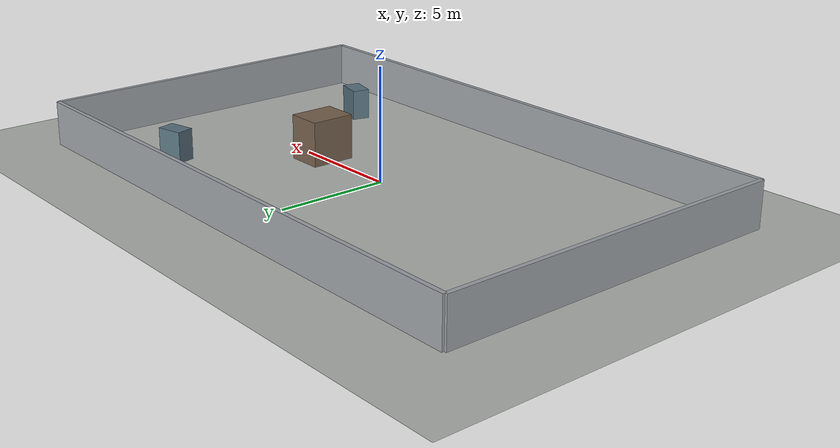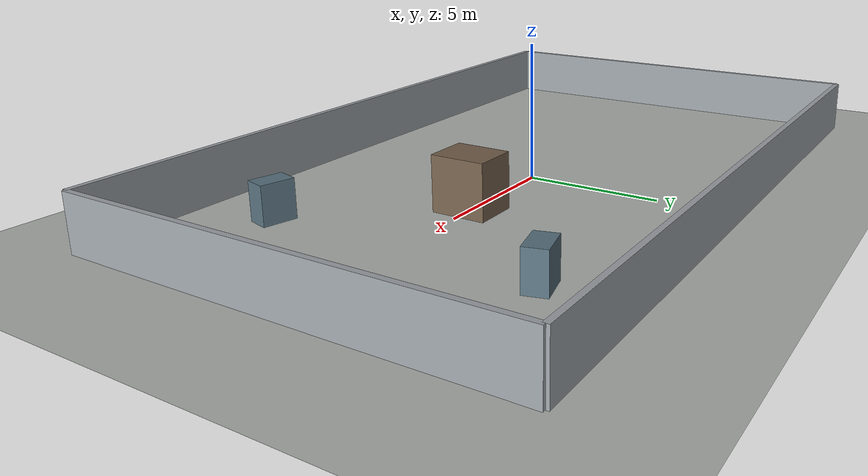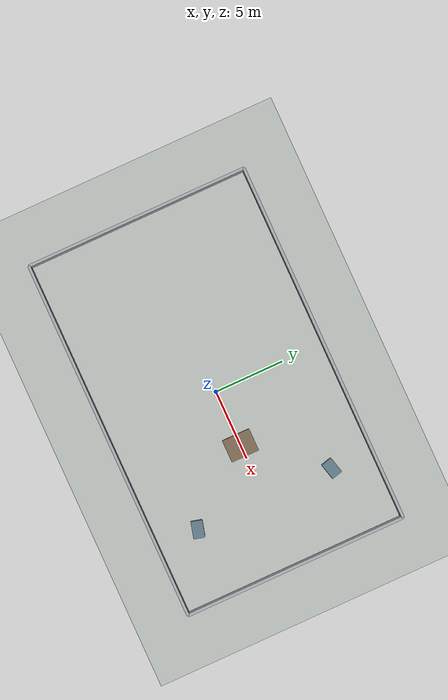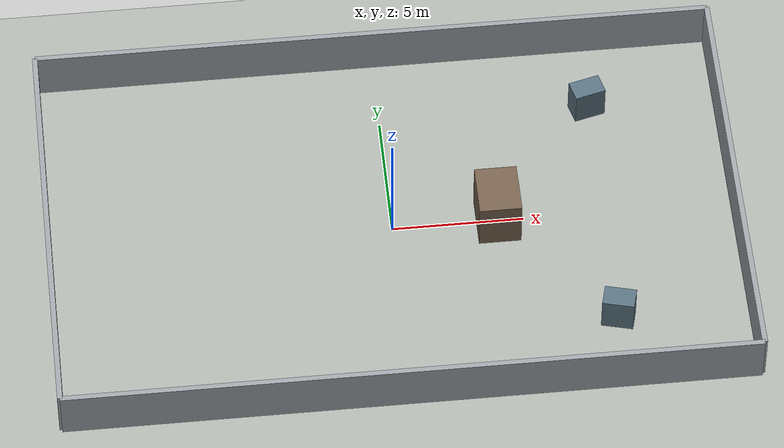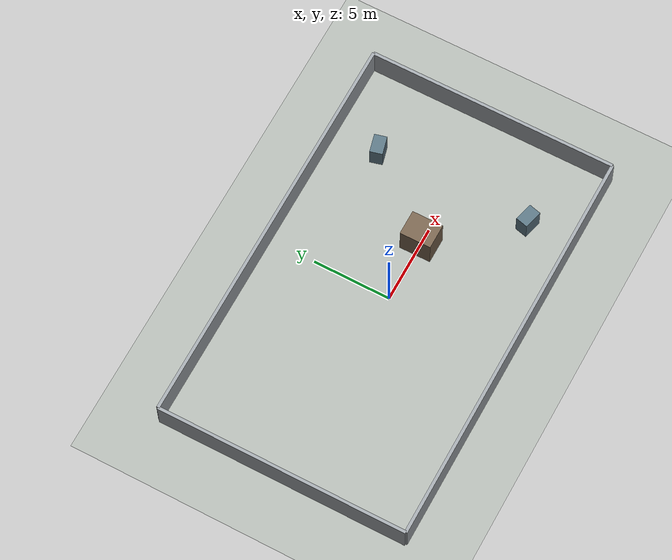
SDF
<?xml version="1.0" ?>
<sdf version="1.9">
  <world name="frontier_obstacle_world">
    <physics name="1ms" type="ignored">
      <max_step_size>0.001</max_step_size>
      <real_time_factor>1.0</real_time_factor>
      <real_time_update_rate>1000</real_time_update_rate>
    </physics>

    <plugin name="ignition::gazebo::systems::Physics" filename="ignition-gazebo-physics-system"/>
    <plugin name="ignition::gazebo::systems::SceneBroadcaster" filename="ignition-gazebo-scene-broadcaster-system"/>
    <plugin name="ignition::gazebo::systems::UserCommands" filename="ignition-gazebo-user-commands-system"/>
    <plugin name="ignition::gazebo::systems::Sensors" filename="ignition-gazebo-sensors-system">
      <render_engine>ogre2</render_engine>
    </plugin>

    <gravity>0 0 -9.81</gravity>

    <scene>
      <ambient>0.45 0.45 0.45 1</ambient>
      <background>0.72 0.76 0.80 1</background>
      <shadows>true</shadows>
    </scene>

    <model name="ground_plane">
      <static>true</static>
      <link name="link">
        <collision name="collision">
          <geometry>
            <plane>
              <normal>0 0 1</normal>
              <size>36 24</size>
            </plane>
          </geometry>
        </collision>
        <visual name="visual">
          <geometry>
            <plane>
              <normal>0 0 1</normal>
              <size>36 24</size>
            </plane>
          </geometry>
          <material>
            <ambient>0.68 0.70 0.68 1</ambient>
            <diffuse>0.68 0.70 0.68 1</diffuse>
          </material>
        </visual>
      </link>
    </model>

    <!-- Outer reference walls, far enough not to close the useful passages even with safety inflation. -->
    <model name="north_wall">
      <static>true</static>
      <pose>0 8.0 1 0 0 0</pose>
      <link name="link">
        <collision name="collision"><geometry><box><size>26 0.2 2</size></box></geometry></collision>
        <visual name="visual"><geometry><box><size>26 0.2 2</size></box></geometry>
          <material><ambient>0.62 0.64 0.66 1</ambient><diffuse>0.62 0.64 0.66 1</diffuse></material>
        </visual>
      </link>
    </model>

    <model name="south_wall">
      <static>true</static>
      <pose>0 -8.0 1 0 0 0</pose>
      <link name="link">
        <collision name="collision"><geometry><box><size>26 0.2 2</size></box></geometry></collision>
        <visual name="visual"><geometry><box><size>26 0.2 2</size></box></geometry>
          <material><ambient>0.62 0.64 0.66 1</ambient><diffuse>0.62 0.64 0.66 1</diffuse></material>
        </visual>
      </link>
    </model>

    <model name="west_wall">
      <static>true</static>
      <pose>-13 0 1 0 0 1.5708</pose>
      <link name="link">
        <collision name="collision"><geometry><box><size>16 0.2 2</size></box></geometry></collision>
        <visual name="visual"><geometry><box><size>16 0.2 2</size></box></geometry>
          <material><ambient>0.62 0.64 0.66 1</ambient><diffuse>0.62 0.64 0.66 1</diffuse></material>
        </visual>
      </link>
    </model>

    <model name="east_wall">
      <static>true</static>
      <pose>13 0 1 0 0 1.5708</pose>
      <link name="link">
        <collision name="collision"><geometry><box><size>16 0.2 2</size></box></geometry></collision>
        <visual name="visual"><geometry><box><size>16 0.2 2</size></box></geometry>
          <material><ambient>0.62 0.64 0.66 1</ambient><diffuse>0.62 0.64 0.66 1</diffuse></material>
        </visual>
      </link>
    </model>

    <!-- Main occluder: from the start, the goal behind it should remain unknown. -->
    <model name="central_block">
      <static>true</static>
      <pose>4.0 0 1 0 0 0</pose>
      <link name="link">
        <collision name="collision"><geometry><box><size>1.6 2.0 2.0</size></box></geometry></collision>
        <visual name="visual"><geometry><box><size>1.6 2.0 2.0</size></box></geometry>
          <material><ambient>0.46 0.38 0.30 1</ambient><diffuse>0.46 0.38 0.30 1</diffuse></material>
        </visual>
      </link>
    </model>

    <!-- Small side obstacles make the map realistic but leave wide passages. -->
    <model name="side_box_north">
      <static>true</static>
      <pose>8.0 5.0 0.7 0 0 0.25</pose>
      <link name="link">
        <collision name="collision"><geometry><box><size>1.2 0.8 1.4</size></box></geometry></collision>
        <visual name="visual"><geometry><box><size>1.2 0.8 1.4</size></box></geometry>
          <material><ambient>0.35 0.45 0.50 1</ambient><diffuse>0.35 0.45 0.50 1</diffuse></material>
        </visual>
      </link>
    </model>

    <model name="side_box_south">
      <static>true</static>
      <pose>8.0 -5.0 0.7 0 0 -0.25</pose>
      <link name="link">
        <collision name="collision"><geometry><box><size>1.2 0.8 1.4</size></box></geometry></collision>
        <visual name="visual"><geometry><box><size>1.2 0.8 1.4</size></box></geometry>
          <material><ambient>0.35 0.45 0.50 1</ambient><diffuse>0.35 0.45 0.50 1</diffuse></material>
        </visual>
      </link>
    </model>

    <light name="sun" type="directional">
      <pose>0 0 10 0 0 0</pose>
      <cast_shadows>true</cast_shadows>
      <intensity>1.0</intensity>
      <direction>-0.4 0.2 -0.9</direction>
    </light>
  </world>
</sdf>
